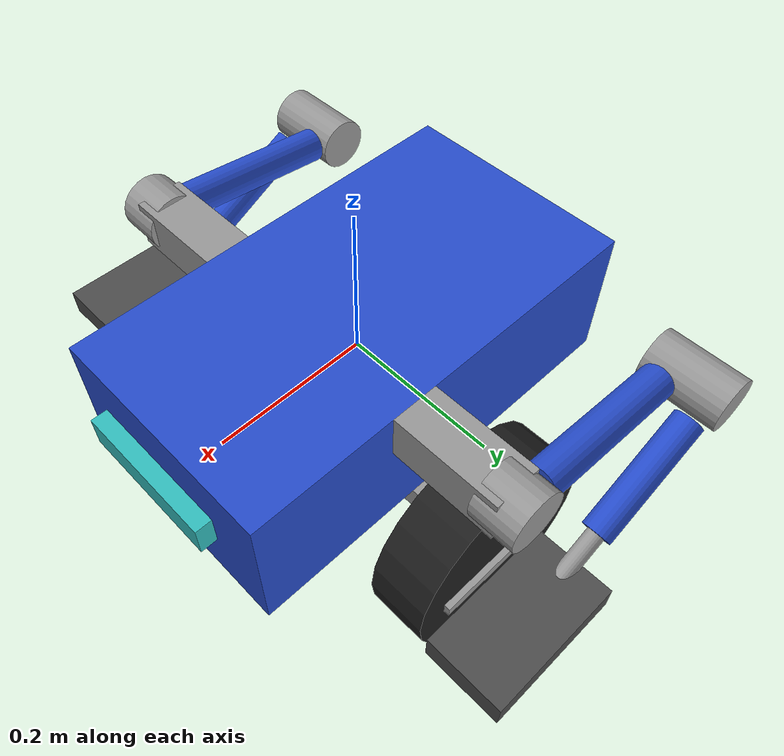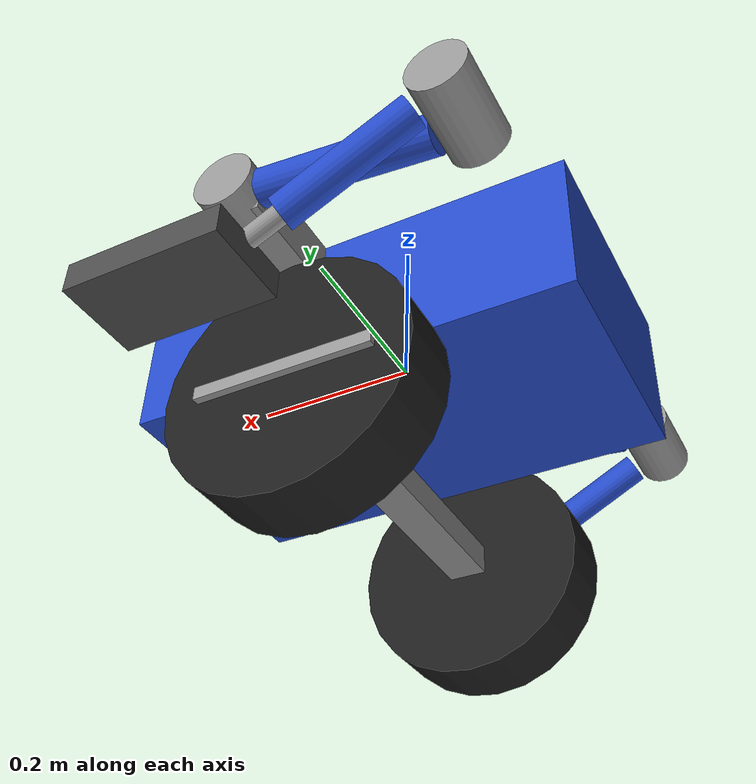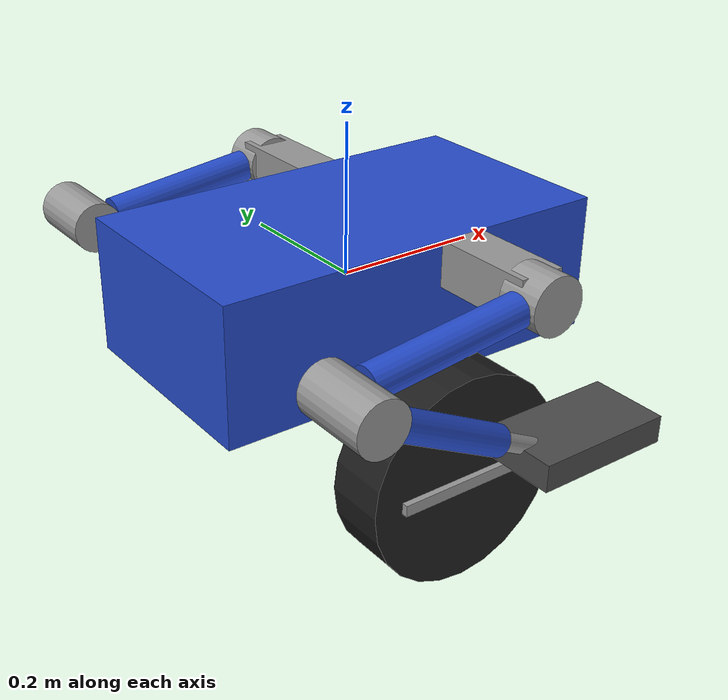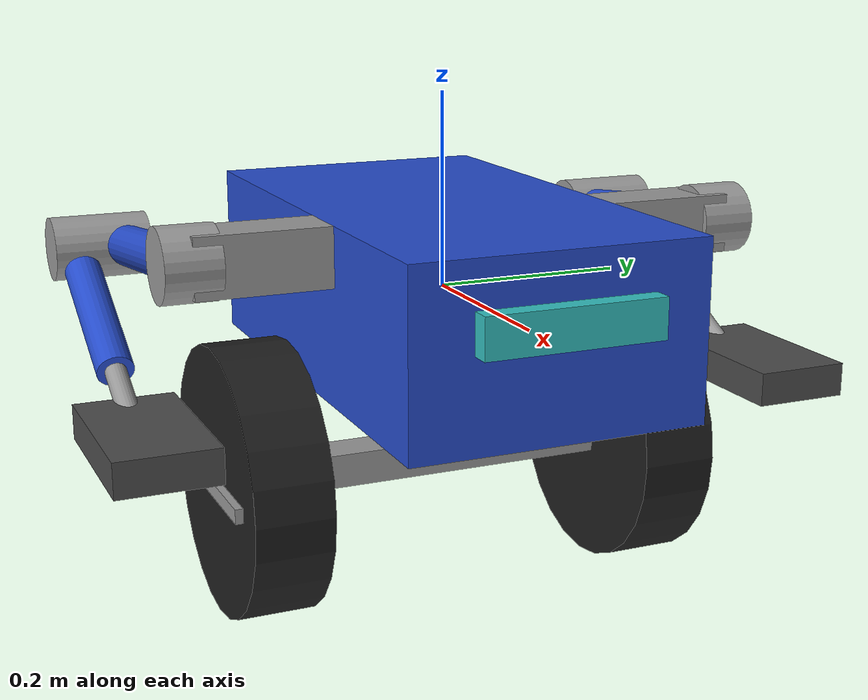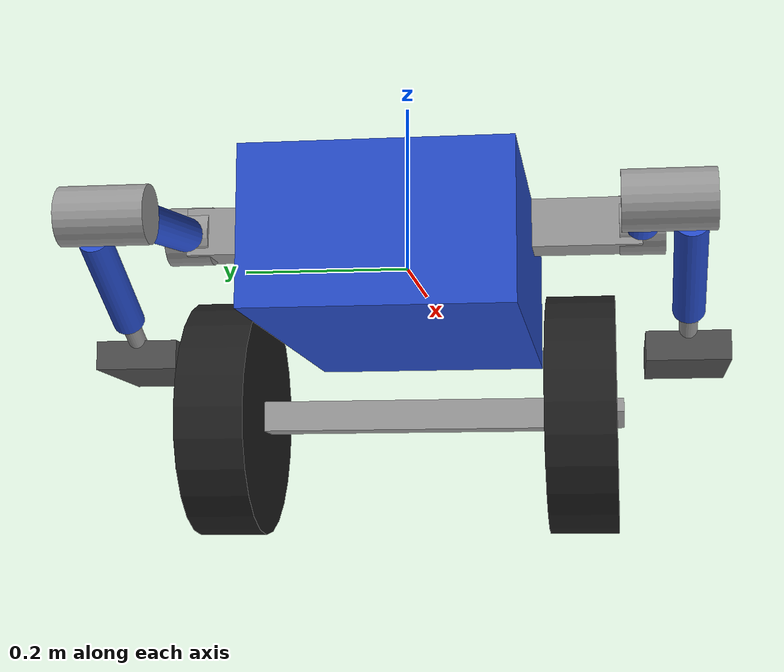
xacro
<?xml version="1.0"?>
<robot name="wheel_leg_robot" xmlns:xacro="http://www.ros.org/wiki/xacro">
  <!-- Stage 1 static display. Compact wheel/leg proportions informed by TITA; concept keeps separate arms.
       Inertias are placeholders; no balance or torque control is implemented. -->
  <xacro:macro name="box_link" params="name size center material">
    <link name="${name}">
      <visual><origin xyz="${center}"/><geometry><box size="${size}"/></geometry></visual>
      <collision><origin xyz="${center}"/><geometry><box size="${size}"/></geometry></collision>
      <inertial><mass value="1"/><inertia ixx="0.01" iyy="0.01" izz="0.01" ixy="0" ixz="0" iyz="0"/></inertial>
    </link>
    <gazebo reference="${name}"><material>${material}</material></gazebo>
  </xacro:macro>
  <xacro:macro name="round_link" params="name radius length center rpy material">
    <link name="${name}">
      <visual><origin xyz="${center}" rpy="${rpy}"/><geometry><cylinder radius="${radius}" length="${length}"/></geometry></visual>
      <collision><origin xyz="${center}" rpy="${rpy}"/><geometry><cylinder radius="${radius}" length="${length}"/></geometry></collision>
      <inertial><mass value="1"/><inertia ixx="0.01" iyy="0.01" izz="0.01" ixy="0" ixz="0" iyz="0"/></inertial>
    </link>
    <gazebo reference="${name}"><material>${material}</material></gazebo>
  </xacro:macro>
  <link name="base_frame"/>
  <joint name="base_frame_joint" type="fixed"><parent link="base_frame"/><child link="base_link"/></joint>
  <xacro:box_link name="base_link" size="0.54 0.30 0.18" center="0 0 0" material="Gazebo/Blue"/>
  <xacro:box_link name="front_marker" size="0.02 0.18 0.04" center="0 0 0" material="Gazebo/Turquoise"/>
  <joint name="front_marker_joint" type="fixed"><parent link="base_link"/><child link="front_marker"/><origin xyz="0.285 0 0.025"/></joint>
  <xacro:box_link name="wheel_carrier" size="0.045 0.42 0.035" center="0 0 0" material="Gazebo/Grey"/>
  <joint name="wheel_lift_joint" type="prismatic">
    <parent link="base_link"/><child link="wheel_carrier"/><origin xyz="0 0 -0.18"/>
    <axis xyz="0 0 1"/><limit lower="0" upper="0.22" effort="1" velocity="1"/>
  </joint>
  <xacro:macro name="wheel_and_arm" params="side sign">
    <link name="${side}_wheel">
      <visual><origin rpy="1.57079632679 0 0"/><geometry><cylinder radius="0.14" length="0.08"/></geometry></visual>
      <collision><origin rpy="1.57079632679 0 0"/><geometry><cylinder radius="0.14" length="0.08"/></geometry></collision>
      <inertial><mass value="1"/><inertia ixx="0.01" iyy="0.01" izz="0.01" ixy="0" ixz="0" iyz="0"/></inertial>
    </link>
    <gazebo reference="${side}_wheel"><material>Gazebo/Black</material></gazebo>
    <joint name="${side}_wheel_joint" type="continuous">
      <parent link="wheel_carrier"/><child link="${side}_wheel"/><origin xyz="0 ${sign * 0.21} 0"/>
      <axis xyz="0 1 0"/><limit effort="1" velocity="1"/>
    </joint>
    <xacro:round_link name="${side}_shoulder" radius="0.037" length="0.056" center="0 0 0" rpy="1.57079632679 0 0" material="Gazebo/Grey"/>
    <joint name="${side}_shoulder_mount" type="fixed">
      <parent link="base_link"/><child link="${side}_shoulder"/><origin xyz="0.06 ${sign * 0.285} 0.06"/>
    </joint>
    <!-- Shoulder bridge connects the side housing to the torso. -->
    <xacro:box_link name="${side}_shoulder_bridge" size="0.06 0.135 0.06" center="0 0 0" material="Gazebo/Grey"/>
    <joint name="${side}_bridge_mount" type="fixed">
      <parent link="base_link"/><child link="${side}_shoulder_bridge"/><origin xyz="0.06 ${sign * 0.2175} 0.06"/>
    </joint>
    <xacro:round_link name="${side}_upper_arm" radius="0.022" length="0.21" center="0 0 -0.14" rpy="0 0 0" material="Gazebo/Blue"/>
    <joint name="${side}_shoulder_joint" type="revolute">
      <parent link="${side}_shoulder"/><child link="${side}_upper_arm"/><origin rpy="0 1.45 0"/>
      <axis xyz="0 1 0"/><limit lower="-3.14" upper="3.14" effort="1" velocity="1"/>
    </joint>
    <xacro:round_link name="${side}_forearm" radius="0.019" length="0.16" center="0 0 -0.12" rpy="0 0 0" material="Gazebo/Blue"/>
    <joint name="${side}_elbow_joint" type="revolute">
      <parent link="${side}_upper_arm"/><child link="${side}_forearm"/><origin xyz="0 ${sign * 0.05} -0.28" rpy="0 -2.55 0"/>
      <axis xyz="0 1 0"/><limit lower="-3.14" upper="3.14" effort="1" velocity="1"/>
    </joint>
    <xacro:round_link name="${side}_elbow" radius="0.034" length="0.102" center="0 ${-sign * 0.025} 0" rpy="1.57079632679 0 0" material="Gazebo/Grey"/>
    <joint name="${side}_elbow_housing" type="fixed"><parent link="${side}_forearm"/><child link="${side}_elbow"/></joint>
    <!-- Slim ankle connector reaches the heel-mounted pitch joint. -->
    <xacro:round_link name="${side}_ankle_stem" radius="0.011" length="0.08" center="0 0 -0.24" rpy="0 0 0" material="Gazebo/Grey"/>
    <joint name="${side}_ankle_stem_mount" type="fixed"><parent link="${side}_forearm"/><child link="${side}_ankle_stem"/></joint>
    <xacro:box_link name="${side}_foot" size="0.18 0.10 0.035" center="0.05 0 0" material="Gazebo/DarkGrey"/>
    <joint name="${side}_foot_joint" type="revolute">
      <parent link="${side}_forearm"/><child link="${side}_foot"/><origin xyz="0 0 -0.28" rpy="0 1.1 0"/>
      <axis xyz="0 1 0"/><limit lower="-6.28" upper="6.28" effort="1" velocity="1"/>
    </joint>
    <xacro:box_link name="${side}_wheel_spoke" size="0.20 0.008 0.015" center="0 0 0" material="Gazebo/Grey"/>
    <joint name="${side}_wheel_spoke_mount" type="fixed"><parent link="${side}_wheel"/><child link="${side}_wheel_spoke"/><origin xyz="0 ${sign * 0.044} 0"/></joint>
  </xacro:macro>
  <!-- Arm rods stop short of the pivot centres; housings form the joints. -->
  <xacro:wheel_and_arm side="left" sign="${1}"/>
  <xacro:wheel_and_arm side="right" sign="${-1}"/>
  <gazebo><static>true</static></gazebo>
</robot>
